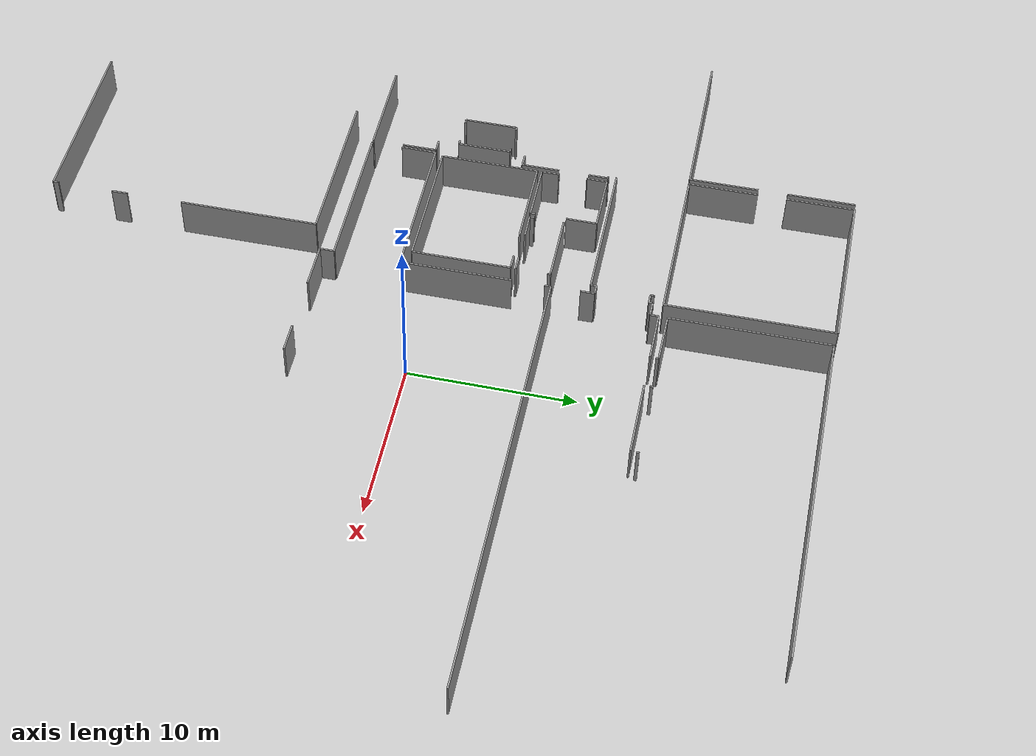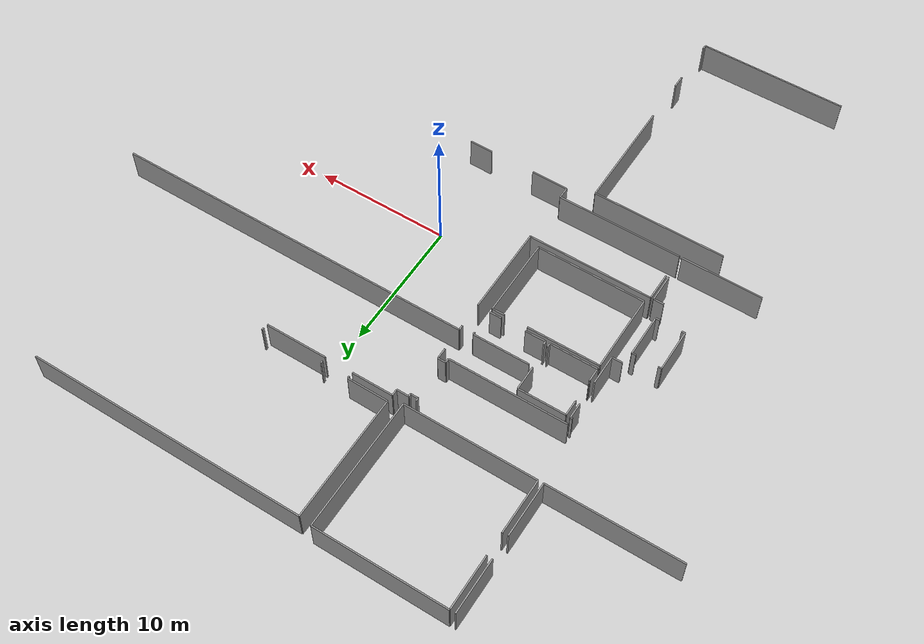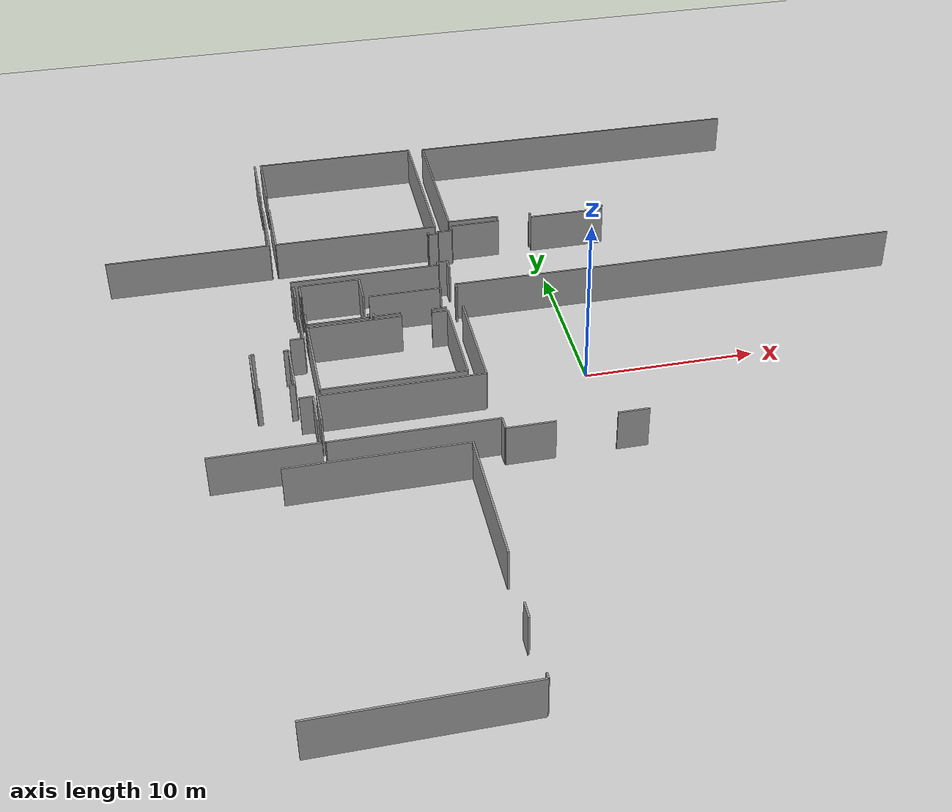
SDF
<sdf version="1.6">
 <world name="default">
  <model name="ground_plane">
   <static>1</static>
   <link name="link">
    <collision name="collision">
     <geometry><plane><normal>0 0 1</normal><size>100 100</size></plane></geometry>
     <surface><friction><ode><mu>100</mu><mu2>50</mu2></ode></friction></surface>
    </collision>
    <visual name="visual">
     <cast_shadows>0</cast_shadows>
     <geometry><plane><normal>0 0 1</normal><size>100 100</size></plane></geometry>
     <material>
      <script><uri>file://media/materials/scripts/gazebo.material</uri><name>Gazebo/Grey</name></script>
     </material>
    </visual>
   </link>
  </model>
  <model name="0510032194_A_40_1_102">
   <static>1</static>
   <link name="Wall_89">
    <collision name="Wall_89_Collision">
     <geometry><box><size>4.08725719516 0.1 2.5</size></box></geometry>
     <pose>2.04362859758 0 1.25 0 0 0</pose>
    </collision>
    <visual name="Wall_89_Visual">
     <pose>2.04362859758 0 1.25 0 0 0</pose>
     <geometry><box><size>4.08725719516 0.1 2.5</size></box></geometry>
     <material>
      <script><uri>file://media/materials/scripts/gazebo.material</uri><name>Gazebo/Grey</name></script>
      <ambient>1 1 1 1</ambient>
     </material>
    </visual>
    <pose>51.1231312926 -0.00457642631954 0 0 0 -1.57079632679</pose>
   </link>
   <link name="Wall_90">
    <collision name="Wall_90_Collision">
     <geometry><box><size>4.16683616394 0.1 2.5</size></box></geometry>
     <pose>2.08341808197 0 1.25 0 0 0</pose>
    </collision>
    <visual name="Wall_90_Visual">
     <pose>2.08341808197 0 1.25 0 0 0</pose>
     <geometry><box><size>4.16683616394 0.1 2.5</size></box></geometry>
     <material>
      <script><uri>file://media/materials/scripts/gazebo.material</uri><name>Gazebo/Grey</name></script>
      <ambient>1 1 1 1</ambient>
     </material>
    </visual>
    <pose>51.1231312926 -5.85057968067 0 0 0 -1.57079632679</pose>
   </link>
   <link name="Wall_91">
    <collision name="Wall_91_Collision">
     <geometry><box><size>9.88649136722 0.1 2.5</size></box></geometry>
     <pose>4.94324568361 0 1.25 0 0 0</pose>
    </collision>
    <visual name="Wall_91_Visual">
     <pose>4.94324568361 0 1.25 0 0 0</pose>
     <geometry><box><size>9.88649136722 0.1 2.5</size></box></geometry>
     <material>
      <script><uri>file://media/materials/scripts/gazebo.material</uri><name>Gazebo/Grey</name></script>
      <ambient>1 1 1 1</ambient>
     </material>
    </visual>
    <pose>51.1231312926 -10.0174158446 0 0 0 -3.14002394675</pose>
   </link>
   <link name="Wall_99">
    <collision name="Wall_99_Collision">
     <geometry><box><size>4.18234516424 0.1 2.5</size></box></geometry>
     <pose>2.09117258212 0 1.25 0 0 0</pose>
    </collision>
    <visual name="Wall_99_Visual">
     <pose>2.09117258212 0 1.25 0 0 0</pose>
     <geometry><box><size>4.18234516424 0.1 2.5</size></box></geometry>
     <material>
      <script><uri>file://media/materials/scripts/gazebo.material</uri><name>Gazebo/Grey</name></script>
      <ambient>1 1 1 1</ambient>
     </material>
    </visual>
    <pose>51.527890776 -10.0075002542 0 0 0 1.57079632679</pose>
   </link>
   <link name="Wall_100">
    <collision name="Wall_100_Collision">
     <geometry><box><size>4.07556188345 0.1 2.5</size></box></geometry>
     <pose>2.03778094173 0 1.25 0 0 0</pose>
    </collision>
    <visual name="Wall_100_Visual">
     <pose>2.03778094173 0 1.25 0 0 0</pose>
     <geometry><box><size>4.07556188345 0.1 2.5</size></box></geometry>
     <material>
      <script><uri>file://media/materials/scripts/gazebo.material</uri><name>Gazebo/Grey</name></script>
      <ambient>1 1 1 1</ambient>
     </material>
    </visual>
    <pose>51.527890776 -4.09475744941 0 0 0 1.57079632679</pose>
   </link>
   <link name="Wall_101">
    <collision name="Wall_101_Collision">
     <geometry><box><size>9.96643954032 0.1 2.5</size></box></geometry>
     <pose>4.98321977016 0 1.25 0 0 0</pose>
    </collision>
    <visual name="Wall_101_Visual">
     <pose>4.98321977016 0 1.25 0 0 0</pose>
     <geometry><box><size>9.96643954032 0.1 2.5</size></box></geometry>
     <material>
      <script><uri>file://media/materials/scripts/gazebo.material</uri><name>Gazebo/Grey</name></script>
      <ambient>1 1 1 1</ambient>
     </material>
    </visual>
    <pose>51.527890776 -0.0191955659514 0 0 0 0.0</pose>
   </link>
   <link name="Wall_102">
    <collision name="Wall_102_Collision">
     <geometry><box><size>10.013729279 0.1 2.5</size></box></geometry>
     <pose>5.00686463948 0 1.25 0 0 0</pose>
    </collision>
    <visual name="Wall_102_Visual">
     <pose>5.00686463948 0 1.25 0 0 0</pose>
     <geometry><box><size>10.013729279 0.1 2.5</size></box></geometry>
     <material>
      <script><uri>file://media/materials/scripts/gazebo.material</uri><name>Gazebo/Grey</name></script>
      <ambient>1 1 1 1</ambient>
     </material>
    </visual>
    <pose>61.4943303163 -0.0191955659514 0 0 0 -1.57079632679</pose>
   </link>
   <link name="Wall_103">
    <collision name="Wall_103_Collision">
     <geometry><box><size>9.9664719696 0.1 2.5</size></box></geometry>
     <pose>4.9832359848 0 1.25 0 0 0</pose>
    </collision>
    <visual name="Wall_103_Visual">
     <pose>4.9832359848 0 1.25 0 0 0</pose>
     <geometry><box><size>9.9664719696 0.1 2.5</size></box></geometry>
     <material>
      <script><uri>file://media/materials/scripts/gazebo.material</uri><name>Gazebo/Grey</name></script>
      <ambient>1 1 1 1</ambient>
     </material>
    </visual>
    <pose>61.4943303163 -10.0329248449 0 0 0 3.13904163872</pose>
   </link>
   <link name="Wall_104">
    <collision name="Wall_104_Collision">
     <geometry><box><size>9.50676294112 0.1 2.5</size></box></geometry>
     <pose>4.75338147056 0 1.25 0 0 0</pose>
    </collision>
    <visual name="Wall_104_Visual">
     <pose>4.75338147056 0 1.25 0 0 0</pose>
     <geometry><box><size>9.50676294112 0.1 2.5</size></box></geometry>
     <material>
      <script><uri>file://media/materials/scripts/gazebo.material</uri><name>Gazebo/Grey</name></script>
      <ambient>1 1 1 1</ambient>
     </material>
    </visual>
    <pose>62.4490236957 -9.65282721448 0 0 0 1.57079632679</pose>
   </link>
   <link name="Wall_105">
    <collision name="Wall_105_Collision">
     <geometry><box><size>21.0210515611 0.1 2.5</size></box></geometry>
     <pose>10.5105257805 0 1.25 0 0 0</pose>
    </collision>
    <visual name="Wall_105_Visual">
     <pose>10.5105257805 0 1.25 0 0 0</pose>
     <geometry><box><size>21.0210515611 0.1 2.5</size></box></geometry>
     <material>
      <script><uri>file://media/materials/scripts/gazebo.material</uri><name>Gazebo/Grey</name></script>
      <ambient>1 1 1 1</ambient>
     </material>
    </visual>
    <pose>62.4490236957 -0.146064273365 0 0 0 0.0</pose>
   </link>
   <link name="Wall_113">
    <collision name="Wall_113_Collision">
     <geometry><box><size>0.173014339469 0.1 2.5</size></box></geometry>
     <pose>0.0865071697346 0 1.25 0 0 0</pose>
    </collision>
    <visual name="Wall_113_Visual">
     <pose>0.0865071697346 0 1.25 0 0 0</pose>
     <geometry><box><size>0.173014339469 0.1 2.5</size></box></geometry>
     <material>
      <script><uri>file://media/materials/scripts/gazebo.material</uri><name>Gazebo/Grey</name></script>
      <ambient>1 1 1 1</ambient>
     </material>
    </visual>
    <pose>72.3759279976 -9.84300315265 0 0 0 1.57079632679</pose>
   </link>
   <link name="Wall_115">
    <collision name="Wall_115_Collision">
     <geometry><box><size>0.177972134649 0.1 2.5</size></box></geometry>
     <pose>0.0889860673243 0 1.25 0 0 0</pose>
    </collision>
    <visual name="Wall_115_Visual">
     <pose>0.0889860673243 0 1.25 0 0 0</pose>
     <geometry><box><size>0.177972134649 0.1 2.5</size></box></geometry>
     <material>
      <script><uri>file://media/materials/scripts/gazebo.material</uri><name>Gazebo/Grey</name></script>
      <ambient>1 1 1 1</ambient>
     </material>
    </visual>
    <pose>67.6519119292 -9.66998881318 0 0 0 -1.57079632679</pose>
   </link>
   <link name="Wall_116">
    <collision name="Wall_116_Collision">
     <geometry><box><size>0.163734363877 0.1 2.5</size></box></geometry>
     <pose>0.0818671819384 0 1.25 0 0 0</pose>
    </collision>
    <visual name="Wall_116_Visual">
     <pose>0.0818671819384 0 1.25 0 0 0</pose>
     <geometry><box><size>0.163734363877 0.1 2.5</size></box></geometry>
     <material>
      <script><uri>file://media/materials/scripts/gazebo.material</uri><name>Gazebo/Grey</name></script>
      <ambient>1 1 1 1</ambient>
     </material>
    </visual>
    <pose>65.5434506254 -9.84796094783 0 0 0 1.57079632679</pose>
   </link>
   <link name="Wall_117">
    <collision name="Wall_117_Collision">
     <geometry><box><size>3.09458623144 0.1 2.5</size></box></geometry>
     <pose>1.54729311572 0 1.25 0 0 0</pose>
    </collision>
    <visual name="Wall_117_Visual">
     <pose>1.54729311572 0 1.25 0 0 0</pose>
     <geometry><box><size>3.09458623144 0.1 2.5</size></box></geometry>
     <material>
      <script><uri>file://media/materials/scripts/gazebo.material</uri><name>Gazebo/Grey</name></script>
      <ambient>1 1 1 1</ambient>
     </material>
    </visual>
    <pose>65.5434506254 -9.68422658395 0 0 0 3.13144593092</pose>
   </link>
   <link name="Wall_203">
    <collision name="Wall_203_Collision">
     <geometry><box><size>0.154708634191 0.1 2.5</size></box></geometry>
     <pose>0.0773543170955 0 1.25 0 0 0</pose>
    </collision>
    <visual name="Wall_203_Visual">
     <pose>0.0773543170955 0 1.25 0 0 0</pose>
     <geometry><box><size>0.154708634191 0.1 2.5</size></box></geometry>
     <material>
      <script><uri>file://media/materials/scripts/gazebo.material</uri><name>Gazebo/Grey</name></script>
      <ambient>1 1 1 1</ambient>
     </material>
    </visual>
    <pose>51.9325231364 -14.8812671616 0 0 0 0.0</pose>
   </link>
   <link name="Wall_204">
    <collision name="Wall_204_Collision">
     <geometry><box><size>1.18275195769 0.1 2.5</size></box></geometry>
     <pose>0.591375978847 0 1.25 0 0 0</pose>
    </collision>
    <visual name="Wall_204_Visual">
     <pose>0.591375978847 0 1.25 0 0 0</pose>
     <geometry><box><size>1.18275195769 0.1 2.5</size></box></geometry>
     <material>
      <script><uri>file://media/materials/scripts/gazebo.material</uri><name>Gazebo/Grey</name></script>
      <ambient>1 1 1 1</ambient>
     </material>
    </visual>
    <pose>52.0872317706 -14.8812671616 0 0 0 -1.57079632679</pose>
   </link>
   <link name="Wall_205">
    <collision name="Wall_205_Collision">
     <geometry><box><size>2.27817044646 0.1 2.5</size></box></geometry>
     <pose>1.13908522323 0 1.25 0 0 0</pose>
    </collision>
    <visual name="Wall_205_Visual">
     <pose>1.13908522323 0 1.25 0 0 0</pose>
     <geometry><box><size>2.27817044646 0.1 2.5</size></box></geometry>
     <material>
      <script><uri>file://media/materials/scripts/gazebo.material</uri><name>Gazebo/Grey</name></script>
      <ambient>1 1 1 1</ambient>
     </material>
    </visual>
    <pose>52.0872317706 -17.8981490898 0 0 0 -1.57079632679</pose>
   </link>
   <link name="Wall_206">
    <collision name="Wall_206_Collision">
     <geometry><box><size>0.78905217126 0.1 2.5</size></box></geometry>
     <pose>0.39452608563 0 1.25 0 0 0</pose>
    </collision>
    <visual name="Wall_206_Visual">
     <pose>0.39452608563 0 1.25 0 0 0</pose>
     <geometry><box><size>0.78905217126 0.1 2.5</size></box></geometry>
     <material>
      <script><uri>file://media/materials/scripts/gazebo.material</uri><name>Gazebo/Grey</name></script>
      <ambient>1 1 1 1</ambient>
     </material>
    </visual>
    <pose>52.0872317706 -20.1763195363 0 0 0 3.14159265359</pose>
   </link>
   <link name="Wall_209">
    <collision name="Wall_209_Collision">
     <geometry><box><size>0.235940201363 0.1 2.5</size></box></geometry>
     <pose>0.117970100681 0 1.25 0 0 0</pose>
    </collision>
    <visual name="Wall_209_Visual">
     <pose>0.117970100681 0 1.25 0 0 0</pose>
     <geometry><box><size>0.235940201363 0.1 2.5</size></box></geometry>
     <material>
      <script><uri>file://media/materials/scripts/gazebo.material</uri><name>Gazebo/Grey</name></script>
      <ambient>1 1 1 1</ambient>
     </material>
    </visual>
    <pose>60.9356249364 -10.6431150208 0 0 0 -1.57079632679</pose>
   </link>
   <link name="Wall_210">
    <collision name="Wall_210_Collision">
     <geometry><box><size>0.576756839215 0.1 2.5</size></box></geometry>
     <pose>0.288378419607 0 1.25 0 0 0</pose>
    </collision>
    <visual name="Wall_210_Visual">
     <pose>0.288378419607 0 1.25 0 0 0</pose>
     <geometry><box><size>0.576756839215 0.1 2.5</size></box></geometry>
     <material>
      <script><uri>file://media/materials/scripts/gazebo.material</uri><name>Gazebo/Grey</name></script>
      <ambient>1 1 1 1</ambient>
     </material>
    </visual>
    <pose>60.9356249364 -10.8790552222 0 0 0 0.0</pose>
   </link>
   <link name="Wall_211">
    <collision name="Wall_211_Collision">
     <geometry><box><size>0.208990135259 0.1 2.5</size></box></geometry>
     <pose>0.104495067629 0 1.25 0 0 0</pose>
    </collision>
    <visual name="Wall_211_Visual">
     <pose>0.104495067629 0 1.25 0 0 0</pose>
     <geometry><box><size>0.208990135259 0.1 2.5</size></box></geometry>
     <material>
      <script><uri>file://media/materials/scripts/gazebo.material</uri><name>Gazebo/Grey</name></script>
      <ambient>1 1 1 1</ambient>
     </material>
    </visual>
    <pose>61.5123817757 -10.8790552222 0 0 0 1.57079632679</pose>
   </link>
   <link name="Wall_212">
    <collision name="Wall_212_Collision">
     <geometry><box><size>0.919480321367 0.1 2.5</size></box></geometry>
     <pose>0.459740160683 0 1.25 0 0 0</pose>
    </collision>
    <visual name="Wall_212_Visual">
     <pose>0.459740160683 0 1.25 0 0 0</pose>
     <geometry><box><size>0.919480321367 0.1 2.5</size></box></geometry>
     <material>
      <script><uri>file://media/materials/scripts/gazebo.material</uri><name>Gazebo/Grey</name></script>
      <ambient>1 1 1 1</ambient>
     </material>
    </visual>
    <pose>61.5123817757 -10.670065087 0 0 0 0.0</pose>
   </link>
   <link name="Wall_213">
    <collision name="Wall_213_Collision">
     <geometry><box><size>0.49310993593 0.1 2.5</size></box></geometry>
     <pose>0.246554967965 0 1.25 0 0 0</pose>
    </collision>
    <visual name="Wall_213_Visual">
     <pose>0.246554967965 0 1.25 0 0 0</pose>
     <geometry><box><size>0.49310993593 0.1 2.5</size></box></geometry>
     <material>
      <script><uri>file://media/materials/scripts/gazebo.material</uri><name>Gazebo/Grey</name></script>
      <ambient>1 1 1 1</ambient>
     </material>
    </visual>
    <pose>62.431862097 -10.670065087 0 0 0 1.57079632679</pose>
   </link>
   <link name="Wall_214">
    <collision name="Wall_214_Collision">
     <geometry><box><size>3.10014746263 0.1 2.5</size></box></geometry>
     <pose>1.55007373131 0 1.25 0 0 0</pose>
    </collision>
    <visual name="Wall_214_Visual">
     <pose>1.55007373131 0 1.25 0 0 0</pose>
     <geometry><box><size>3.10014746263 0.1 2.5</size></box></geometry>
     <material>
      <script><uri>file://media/materials/scripts/gazebo.material</uri><name>Gazebo/Grey</name></script>
      <ambient>1 1 1 1</ambient>
     </material>
    </visual>
    <pose>62.431862097 -10.176955151 0 0 0 0.0</pose>
   </link>
   <link name="Wall_215">
    <collision name="Wall_215_Collision">
     <geometry><box><size>4.66286992779 0.1 2.5</size></box></geometry>
     <pose>2.3314349639 0 1.25 0 0 0</pose>
    </collision>
    <visual name="Wall_215_Visual">
     <pose>2.3314349639 0 1.25 0 0 0</pose>
     <geometry><box><size>4.66286992779 0.1 2.5</size></box></geometry>
     <material>
      <script><uri>file://media/materials/scripts/gazebo.material</uri><name>Gazebo/Grey</name></script>
      <ambient>1 1 1 1</ambient>
     </material>
    </visual>
    <pose>67.6539458965 -10.176955151 0 0 0 0.0</pose>
   </link>
   <link name="Wall_232">
    <collision name="Wall_232_Collision">
     <geometry><box><size>0.835706295129 0.1 2.5</size></box></geometry>
     <pose>0.417853147564 0 1.25 0 0 0</pose>
    </collision>
    <visual name="Wall_232_Visual">
     <pose>0.417853147564 0 1.25 0 0 0</pose>
     <geometry><box><size>0.835706295129 0.1 2.5</size></box></geometry>
     <material>
      <script><uri>file://media/materials/scripts/gazebo.material</uri><name>Gazebo/Grey</name></script>
      <ambient>1 1 1 1</ambient>
     </material>
    </visual>
    <pose>61.5043730296 -14.8888945388 0 0 0 1.57079632679</pose>
   </link>
   <link name="Wall_233">
    <collision name="Wall_233_Collision">
     <geometry><box><size>0.595952405166 0.1 2.5</size></box></geometry>
     <pose>0.297976202583 0 1.25 0 0 0</pose>
    </collision>
    <visual name="Wall_233_Visual">
     <pose>0.297976202583 0 1.25 0 0 0</pose>
     <geometry><box><size>0.595952405166 0.1 2.5</size></box></geometry>
     <material>
      <script><uri>file://media/materials/scripts/gazebo.material</uri><name>Gazebo/Grey</name></script>
      <ambient>1 1 1 1</ambient>
     </material>
    </visual>
    <pose>61.5043730296 -14.0531882437 0 0 0 3.14159265359</pose>
   </link>
   <link name="Wall_234">
    <collision name="Wall_234_Collision">
     <geometry><box><size>0.326833112987 0.1 2.5</size></box></geometry>
     <pose>0.163416556493 0 1.25 0 0 0</pose>
    </collision>
    <visual name="Wall_234_Visual">
     <pose>0.163416556493 0 1.25 0 0 0</pose>
     <geometry><box><size>0.326833112987 0.1 2.5</size></box></geometry>
     <material>
      <script><uri>file://media/materials/scripts/gazebo.material</uri><name>Gazebo/Grey</name></script>
      <ambient>1 1 1 1</ambient>
     </material>
    </visual>
    <pose>60.9084206244 -14.0531882437 0 0 0 -1.57079632679</pose>
   </link>
   <link name="Wall_235">
    <collision name="Wall_235_Collision">
     <geometry><box><size>8.95924438117 0.1 2.5</size></box></geometry>
     <pose>4.47962219058 0 1.25 0 0 0</pose>
    </collision>
    <visual name="Wall_235_Visual">
     <pose>4.47962219058 0 1.25 0 0 0</pose>
     <geometry><box><size>8.95924438117 0.1 2.5</size></box></geometry>
     <material>
      <script><uri>file://media/materials/scripts/gazebo.material</uri><name>Gazebo/Grey</name></script>
      <ambient>1 1 1 1</ambient>
     </material>
    </visual>
    <pose>60.9084206244 -14.3800213567 0 0 0 3.14159265359</pose>
   </link>
   <link name="Wall_263">
    <collision name="Wall_263_Collision">
     <geometry><box><size>9.32001932269 0.1 2.5</size></box></geometry>
     <pose>4.66000966134 0 1.25 0 0 0</pose>
    </collision>
    <visual name="Wall_263_Visual">
     <pose>4.66000966134 0 1.25 0 0 0</pose>
     <geometry><box><size>9.32001932269 0.1 2.5</size></box></geometry>
     <material>
      <script><uri>file://media/materials/scripts/gazebo.material</uri><name>Gazebo/Grey</name></script>
      <ambient>1 1 1 1</ambient>
     </material>
    </visual>
    <pose>52.1997355843 -25.5879436591 0 0 0 0.0</pose>
   </link>
   <link name="Wall_264">
    <collision name="Wall_264_Collision">
     <geometry><box><size>6.6519627784 0.1 2.5</size></box></geometry>
     <pose>3.3259813892 0 1.25 0 0 0</pose>
    </collision>
    <visual name="Wall_264_Visual">
     <pose>3.3259813892 0 1.25 0 0 0</pose>
     <geometry><box><size>6.6519627784 0.1 2.5</size></box></geometry>
     <material>
      <script><uri>file://media/materials/scripts/gazebo.material</uri><name>Gazebo/Grey</name></script>
      <ambient>1 1 1 1</ambient>
     </material>
    </visual>
    <pose>61.5197549069 -25.5879436591 0 0 0 1.57079632679</pose>
   </link>
   <link name="Wall_265">
    <collision name="Wall_265_Collision">
     <geometry><box><size>0.369800671209 0.1 2.5</size></box></geometry>
     <pose>0.184900335605 0 1.25 0 0 0</pose>
    </collision>
    <visual name="Wall_265_Visual">
     <pose>0.184900335605 0 1.25 0 0 0</pose>
     <geometry><box><size>0.369800671209 0.1 2.5</size></box></geometry>
     <material>
      <script><uri>file://media/materials/scripts/gazebo.material</uri><name>Gazebo/Grey</name></script>
      <ambient>1 1 1 1</ambient>
     </material>
    </visual>
    <pose>61.5197549069 -16.9959574901 0 0 0 1.57079632679</pose>
   </link>
   <link name="Wall_266">
    <collision name="Wall_266_Collision">
     <geometry><box><size>27.442794671 0.1 2.5</size></box></geometry>
     <pose>13.7213973355 0 1.25 0 0 0</pose>
    </collision>
    <visual name="Wall_266_Visual">
     <pose>13.7213973355 0 1.25 0 0 0</pose>
     <geometry><box><size>27.442794671 0.1 2.5</size></box></geometry>
     <material>
      <script><uri>file://media/materials/scripts/gazebo.material</uri><name>Gazebo/Grey</name></script>
      <ambient>1 1 1 1</ambient>
     </material>
    </visual>
    <pose>61.5197549069 -16.6261568189 0 0 0 0.0</pose>
   </link>
   <link name="Wall_275">
    <collision name="Wall_275_Collision">
     <geometry><box><size>1.75811044442 0.1 2.5</size></box></geometry>
     <pose>0.879055222211 0 1.25 0 0 0</pose>
    </collision>
    <visual name="Wall_275_Visual">
     <pose>0.879055222211 0 1.25 0 0 0</pose>
     <geometry><box><size>1.75811044442 0.1 2.5</size></box></geometry>
     <material>
      <script><uri>file://media/materials/scripts/gazebo.material</uri><name>Gazebo/Grey</name></script>
      <ambient>1 1 1 1</ambient>
     </material>
    </visual>
    <pose>69.4027763653 -30.4566256483 0 0 0 3.14159265359</pose>
   </link>
   <link name="Wall_276">
    <collision name="Wall_276_Collision">
     <geometry><box><size>2.7546272755 0.1 2.5</size></box></geometry>
     <pose>1.37731363775 0 1.25 0 0 0</pose>
    </collision>
    <visual name="Wall_276_Visual">
     <pose>1.37731363775 0 1.25 0 0 0</pose>
     <geometry><box><size>2.7546272755 0.1 2.5</size></box></geometry>
     <material>
      <script><uri>file://media/materials/scripts/gazebo.material</uri><name>Gazebo/Grey</name></script>
      <ambient>1 1 1 1</ambient>
     </material>
    </visual>
    <pose>64.2720939693 -30.4566256483 0 0 0 3.14159265359</pose>
   </link>
   <link name="Wall_277">
    <collision name="Wall_277_Collision">
     <geometry><box><size>0.867868402319 0.1 2.5</size></box></geometry>
     <pose>0.433934201159 0 1.25 0 0 0</pose>
    </collision>
    <visual name="Wall_277_Visual">
     <pose>0.433934201159 0 1.25 0 0 0</pose>
     <geometry><box><size>0.867868402319 0.1 2.5</size></box></geometry>
     <material>
      <script><uri>file://media/materials/scripts/gazebo.material</uri><name>Gazebo/Grey</name></script>
      <ambient>1 1 1 1</ambient>
     </material>
    </visual>
    <pose>61.5174666938 -30.4566256483 0 0 0 1.57079632679</pose>
   </link>
   <link name="Wall_278">
    <collision name="Wall_278_Collision">
     <geometry><box><size>9.33997762636 0.1 2.5</size></box></geometry>
     <pose>4.66998881318 0 1.25 0 0 0</pose>
    </collision>
    <visual name="Wall_278_Visual">
     <pose>4.66998881318 0 1.25 0 0 0</pose>
     <geometry><box><size>9.33997762636 0.1 2.5</size></box></geometry>
     <material>
      <script><uri>file://media/materials/scripts/gazebo.material</uri><name>Gazebo/Grey</name></script>
      <ambient>1 1 1 1</ambient>
     </material>
    </visual>
    <pose>61.5174666938 -29.588757246 0 0 0 3.14159265359</pose>
   </link>
   <link name="Wall_279">
    <collision name="Wall_279_Collision">
     <geometry><box><size>0.0479253534018 0.1 2.5</size></box></geometry>
     <pose>0.0239626767009 0 1.25 0 0 0</pose>
    </collision>
    <visual name="Wall_279_Visual">
     <pose>0.0239626767009 0 1.25 0 0 0</pose>
     <geometry><box><size>0.0479253534018 0.1 2.5</size></box></geometry>
     <material>
      <script><uri>file://media/materials/scripts/gazebo.material</uri><name>Gazebo/Grey</name></script>
      <ambient>1 1 1 1</ambient>
     </material>
    </visual>
    <pose>52.1774890674 -29.588757246 0 0 0 1.57079632679</pose>
   </link>
   <link name="Wall_280">
    <collision name="Wall_280_Collision">
     <geometry><box><size>2.10857866275 0.1 2.5</size></box></geometry>
     <pose>1.05428933138 0 1.25 0 0 0</pose>
    </collision>
    <visual name="Wall_280_Visual">
     <pose>1.05428933138 0 1.25 0 0 0</pose>
     <geometry><box><size>2.10857866275 0.1 2.5</size></box></geometry>
     <material>
      <script><uri>file://media/materials/scripts/gazebo.material</uri><name>Gazebo/Grey</name></script>
      <ambient>1 1 1 1</ambient>
     </material>
    </visual>
    <pose>52.1774890674 -27.6964049629 0 0 0 1.56024565114</pose>
   </link>
   <link name="Wall_281">
    <collision name="Wall_281_Collision">
     <geometry><box><size>0.284119800671 0.1 2.5</size></box></geometry>
     <pose>0.142059900336 0 1.25 0 0 0</pose>
    </collision>
    <visual name="Wall_281_Visual">
     <pose>0.142059900336 0 1.25 0 0 0</pose>
     <geometry><box><size>0.284119800671 0.1 2.5</size></box></geometry>
     <material>
      <script><uri>file://media/materials/scripts/gazebo.material</uri><name>Gazebo/Grey</name></script>
      <ambient>1 1 1 1</ambient>
     </material>
    </visual>
    <pose>56.2966541239 -18.9031831588 0 0 0 1.57079632679</pose>
   </link>
   <link name="Wall_282">
    <collision name="Wall_282_Collision">
     <geometry><box><size>4.27120410861 0.1 2.5</size></box></geometry>
     <pose>2.13560205431 0 1.25 0 0 0</pose>
    </collision>
    <visual name="Wall_282_Visual">
     <pose>2.13560205431 0 1.25 0 0 0</pose>
     <geometry><box><size>4.27120410861 0.1 2.5</size></box></geometry>
     <material>
      <script><uri>file://media/materials/scripts/gazebo.material</uri><name>Gazebo/Grey</name></script>
      <ambient>1 1 1 1</ambient>
     </material>
    </visual>
    <pose>56.2966541239 -16.8256127326 0 0 0 0.0</pose>
   </link>
   <link name="Wall_283">
    <collision name="Wall_283_Collision">
     <geometry><box><size>0.171870232889 0.1 2.5</size></box></geometry>
     <pose>0.0859351164446 0 1.25 0 0 0</pose>
    </collision>
    <visual name="Wall_283_Visual">
     <pose>0.0859351164446 0 1.25 0 0 0</pose>
     <geometry><box><size>0.171870232889 0.1 2.5</size></box></geometry>
     <material>
      <script><uri>file://media/materials/scripts/gazebo.material</uri><name>Gazebo/Grey</name></script>
      <ambient>1 1 1 1</ambient>
     </material>
    </visual>
    <pose>60.5678582325 -16.8256127326 0 0 0 -1.57079632679</pose>
   </link>
   <link name="Wall_284">
    <collision name="Wall_284_Collision">
     <geometry><box><size>0.896598189769 0.1 2.5</size></box></geometry>
     <pose>0.448299094885 0 1.25 0 0 0</pose>
    </collision>
    <visual name="Wall_284_Visual">
     <pose>0.448299094885 0 1.25 0 0 0</pose>
     <geometry><box><size>0.896598189769 0.1 2.5</size></box></geometry>
     <material>
      <script><uri>file://media/materials/scripts/gazebo.material</uri><name>Gazebo/Grey</name></script>
      <ambient>1 1 1 1</ambient>
     </material>
    </visual>
    <pose>60.5678582325 -18.8824621174 0 0 0 3.14159265359</pose>
   </link>
   <link name="Wall_285">
    <collision name="Wall_285_Collision">
     <geometry><box><size>1.54646243098 0.1 2.5</size></box></geometry>
     <pose>0.77323121549 0 1.25 0 0 0</pose>
    </collision>
    <visual name="Wall_285_Visual">
     <pose>0.77323121549 0 1.25 0 0 0</pose>
     <geometry><box><size>1.54646243098 0.1 2.5</size></box></geometry>
     <material>
      <script><uri>file://media/materials/scripts/gazebo.material</uri><name>Gazebo/Grey</name></script>
      <ambient>1 1 1 1</ambient>
     </material>
    </visual>
    <pose>57.8429777281 -18.8824621174 0 0 0 -3.12819325827</pose>
   </link>
   <link name="Wall_286">
    <collision name="Wall_286_Collision">
     <geometry><box><size>5.89850503407 0.1 2.5</size></box></geometry>
     <pose>2.94925251703 0 1.25 0 0 0</pose>
    </collision>
    <visual name="Wall_286_Visual">
     <pose>2.94925251703 0 1.25 0 0 0</pose>
     <geometry><box><size>5.89850503407 0.1 2.5</size></box></geometry>
     <material>
      <script><uri>file://media/materials/scripts/gazebo.material</uri><name>Gazebo/Grey</name></script>
      <ambient>1 1 1 1</ambient>
     </material>
    </visual>
    <pose>52.4177514492 -25.0969948134 0 0 0 1.57079632679</pose>
   </link>
   <link name="Wall_287">
    <collision name="Wall_287_Collision">
     <geometry><box><size>5.45103223838 0.1 2.5</size></box></geometry>
     <pose>2.72551611919 0 1.25 0 0 0</pose>
    </collision>
    <visual name="Wall_287_Visual">
     <pose>2.72551611919 0 1.25 0 0 0</pose>
     <geometry><box><size>5.45103223838 0.1 2.5</size></box></geometry>
     <material>
      <script><uri>file://media/materials/scripts/gazebo.material</uri><name>Gazebo/Grey</name></script>
      <ambient>1 1 1 1</ambient>
     </material>
    </visual>
    <pose>52.4177514492 -19.1984897793 0 0 0 0.0</pose>
   </link>
   <link name="Wall_288">
    <collision name="Wall_288_Collision">
     <geometry><box><size>0.95215092037 0.1 2.5</size></box></geometry>
     <pose>0.476075460185 0 1.25 0 0 0</pose>
    </collision>
    <visual name="Wall_288_Visual">
     <pose>0.476075460185 0 1.25 0 0 0</pose>
     <geometry><box><size>0.95215092037 0.1 2.5</size></box></geometry>
     <material>
      <script><uri>file://media/materials/scripts/gazebo.material</uri><name>Gazebo/Grey</name></script>
      <ambient>1 1 1 1</ambient>
     </material>
    </visual>
    <pose>59.6204108614 -19.1984897793 0 0 0 0.0</pose>
   </link>
   <link name="Wall_289">
    <collision name="Wall_289_Collision">
     <geometry><box><size>5.91846333774 0.1 2.5</size></box></geometry>
     <pose>2.95923166887 0 1.25 0 0 0</pose>
    </collision>
    <visual name="Wall_289_Visual">
     <pose>2.95923166887 0 1.25 0 0 0</pose>
     <geometry><box><size>5.91846333774 0.1 2.5</size></box></geometry>
     <material>
      <script><uri>file://media/materials/scripts/gazebo.material</uri><name>Gazebo/Grey</name></script>
      <ambient>1 1 1 1</ambient>
     </material>
    </visual>
    <pose>60.5725617818 -19.1984897793 0 0 0 -1.57079632679</pose>
   </link>
   <link name="Wall_290">
    <collision name="Wall_290_Collision">
     <geometry><box><size>8.15483475576 0.1 2.5</size></box></geometry>
     <pose>4.07741737788 0 1.25 0 0 0</pose>
    </collision>
    <visual name="Wall_290_Visual">
     <pose>4.07741737788 0 1.25 0 0 0</pose>
     <geometry><box><size>8.15483475576 0.1 2.5</size></box></geometry>
     <material>
      <script><uri>file://media/materials/scripts/gazebo.material</uri><name>Gazebo/Grey</name></script>
      <ambient>1 1 1 1</ambient>
     </material>
    </visual>
    <pose>60.5725617818 -25.1169531171 0 0 0 3.13914523139</pose>
   </link>
   <link name="Wall_291">
    <collision name="Wall_291_Collision">
     <geometry><box><size>1.04927285671 0.1 2.5</size></box></geometry>
     <pose>0.524636428354 0 1.25 0 0 0</pose>
    </collision>
    <visual name="Wall_291_Visual">
     <pose>0.524636428354 0 1.25 0 0 0</pose>
     <geometry><box><size>1.04927285671 0.1 2.5</size></box></geometry>
     <material>
      <script><uri>file://media/materials/scripts/gazebo.material</uri><name>Gazebo/Grey</name></script>
      <ambient>1 1 1 1</ambient>
     </material>
    </visual>
    <pose>52.4206752771 -18.9113190278 0 0 0 1.57079632679</pose>
   </link>
   <link name="Wall_292">
    <collision name="Wall_292_Collision">
     <geometry><box><size>0.0505949354215 0.1 2.5</size></box></geometry>
     <pose>0.0252974677108 0 1.25 0 0 0</pose>
    </collision>
    <visual name="Wall_292_Visual">
     <pose>0.0252974677108 0 1.25 0 0 0</pose>
     <geometry><box><size>0.0505949354215 0.1 2.5</size></box></geometry>
     <material>
      <script><uri>file://media/materials/scripts/gazebo.material</uri><name>Gazebo/Grey</name></script>
      <ambient>1 1 1 1</ambient>
     </material>
    </visual>
    <pose>52.4206752771 -17.8620461711 0 0 0 3.14159265359</pose>
   </link>
   <link name="Wall_293">
    <collision name="Wall_293_Collision">
     <geometry><box><size>0.0401708532493 0.1 2.5</size></box></geometry>
     <pose>0.0200854266246 0 1.25 0 0 0</pose>
    </collision>
    <visual name="Wall_293_Visual">
     <pose>0.0200854266246 0 1.25 0 0 0</pose>
     <geometry><box><size>0.0401708532493 0.1 2.5</size></box></geometry>
     <material>
      <script><uri>file://media/materials/scripts/gazebo.material</uri><name>Gazebo/Grey</name></script>
      <ambient>1 1 1 1</ambient>
     </material>
    </visual>
    <pose>52.3700803417 -16.0914776772 0 0 0 0.0</pose>
   </link>
   <link name="Wall_294">
    <collision name="Wall_294_Collision">
     <geometry><box><size>1.19457439235 0.1 2.5</size></box></geometry>
     <pose>0.597287196176 0 1.25 0 0 0</pose>
    </collision>
    <visual name="Wall_294_Visual">
     <pose>0.597287196176 0 1.25 0 0 0</pose>
     <geometry><box><size>1.19457439235 0.1 2.5</size></box></geometry>
     <material>
      <script><uri>file://media/materials/scripts/gazebo.material</uri><name>Gazebo/Grey</name></script>
      <ambient>1 1 1 1</ambient>
     </material>
    </visual>
    <pose>52.410251195 -16.0914776772 0 0 0 1.57079632679</pose>
   </link>
   <link name="Wall_295">
    <collision name="Wall_295_Collision">
     <geometry><box><size>3.57673141462 0.1 2.5</size></box></geometry>
     <pose>1.78836570731 0 1.25 0 0 0</pose>
    </collision>
    <visual name="Wall_295_Visual">
     <pose>1.78836570731 0 1.25 0 0 0</pose>
     <geometry><box><size>3.57673141462 0.1 2.5</size></box></geometry>
     <material>
      <script><uri>file://media/materials/scripts/gazebo.material</uri><name>Gazebo/Grey</name></script>
      <ambient>1 1 1 1</ambient>
     </material>
    </visual>
    <pose>52.410251195 -14.8969032849 0 0 0 0.0</pose>
   </link>
   <link name="Wall_296">
    <collision name="Wall_296_Collision">
     <geometry><box><size>1.84951184786 0.1 2.5</size></box></geometry>
     <pose>0.92475592393 0 1.25 0 0 0</pose>
    </collision>
    <visual name="Wall_296_Visual">
     <pose>0.92475592393 0 1.25 0 0 0</pose>
     <geometry><box><size>1.84951184786 0.1 2.5</size></box></geometry>
     <material>
      <script><uri>file://media/materials/scripts/gazebo.material</uri><name>Gazebo/Grey</name></script>
      <ambient>1 1 1 1</ambient>
     </material>
    </visual>
    <pose>55.9869826096 -14.8969032849 0 0 0 -1.57079632679</pose>
   </link>
   <link name="Wall_297">
    <collision name="Wall_297_Collision">
     <geometry><box><size>0.297976202583 0.1 2.5</size></box></geometry>
     <pose>0.148988101292 0 1.25 0 0 0</pose>
    </collision>
    <visual name="Wall_297_Visual">
     <pose>0.148988101292 0 1.25 0 0 0</pose>
     <geometry><box><size>0.297976202583 0.1 2.5</size></box></geometry>
     <material>
      <script><uri>file://media/materials/scripts/gazebo.material</uri><name>Gazebo/Grey</name></script>
      <ambient>1 1 1 1</ambient>
     </material>
    </visual>
    <pose>55.9869826096 -18.6135970711 0 0 0 -1.57079632679</pose>
   </link>
   <link name="Wall_298">
    <collision name="Wall_298_Collision">
     <geometry><box><size>3.56630734151 0.1 2.5</size></box></geometry>
     <pose>1.78315367076 0 1.25 0 0 0</pose>
    </collision>
    <visual name="Wall_298_Visual">
     <pose>1.78315367076 0 1.25 0 0 0</pose>
     <geometry><box><size>3.56630734151 0.1 2.5</size></box></geometry>
     <material>
      <script><uri>file://media/materials/scripts/gazebo.material</uri><name>Gazebo/Grey</name></script>
      <ambient>1 1 1 1</ambient>
     </material>
    </visual>
    <pose>55.9869826096 -18.9115732737 0 0 0 3.14152136251</pose>
   </link>
   <link name="Wall_299">
    <collision name="Wall_299_Collision">
     <geometry><box><size>3.20654937456 0.1 2.5</size></box></geometry>
     <pose>1.60327468728 0 1.25 0 0 0</pose>
    </collision>
    <visual name="Wall_299_Visual">
     <pose>1.60327468728 0 1.25 0 0 0</pose>
     <geometry><box><size>3.20654937456 0.1 2.5</size></box></geometry>
     <material>
      <script><uri>file://media/materials/scripts/gazebo.material</uri><name>Gazebo/Grey</name></script>
      <ambient>1 1 1 1</ambient>
     </material>
    </visual>
    <pose>48.967888742 -24.3582833316 0 0 0 1.57079632679</pose>
   </link>
   <link name="Wall_300">
    <collision name="Wall_300_Collision">
     <geometry><box><size>0.249033865555 0.1 2.5</size></box></geometry>
     <pose>0.124516932777 0 1.25 0 0 0</pose>
    </collision>
    <visual name="Wall_300_Visual">
     <pose>0.124516932777 0 1.25 0 0 0</pose>
     <geometry><box><size>0.249033865555 0.1 2.5</size></box></geometry>
     <material>
      <script><uri>file://media/materials/scripts/gazebo.material</uri><name>Gazebo/Grey</name></script>
      <ambient>1 1 1 1</ambient>
     </material>
    </visual>
    <pose>48.967888742 -21.1517339571 0 0 0 0.0</pose>
   </link>
   <link name="Wall_301">
    <collision name="Wall_301_Collision">
     <geometry><box><size>0.297976202583 0.1 2.5</size></box></geometry>
     <pose>0.148988101292 0 1.25 0 0 0</pose>
    </collision>
    <visual name="Wall_301_Visual">
     <pose>0.148988101292 0 1.25 0 0 0</pose>
     <geometry><box><size>0.297976202583 0.1 2.5</size></box></geometry>
     <material>
      <script><uri>file://media/materials/scripts/gazebo.material</uri><name>Gazebo/Grey</name></script>
      <ambient>1 1 1 1</ambient>
     </material>
    </visual>
    <pose>50.844350656 -21.1517339571 0 0 0 0.0</pose>
   </link>
   <link name="Wall_302">
    <collision name="Wall_302_Collision">
     <geometry><box><size>3.19650666124 0.1 2.5</size></box></geometry>
     <pose>1.59825333062 0 1.25 0 0 0</pose>
    </collision>
    <visual name="Wall_302_Visual">
     <pose>1.59825333062 0 1.25 0 0 0</pose>
     <geometry><box><size>3.19650666124 0.1 2.5</size></box></geometry>
     <material>
      <script><uri>file://media/materials/scripts/gazebo.material</uri><name>Gazebo/Grey</name></script>
      <ambient>1 1 1 1</ambient>
     </material>
    </visual>
    <pose>51.1423268585 -21.1517339571 0 0 0 -1.57079632679</pose>
   </link>
   <link name="Wall_303">
    <collision name="Wall_303_Collision">
     <geometry><box><size>0.316536153768 0.1 2.5</size></box></geometry>
     <pose>0.158268076884 0 1.25 0 0 0</pose>
    </collision>
    <visual name="Wall_303_Visual">
     <pose>0.158268076884 0 1.25 0 0 0</pose>
     <geometry><box><size>0.316536153768 0.1 2.5</size></box></geometry>
     <material>
      <script><uri>file://media/materials/scripts/gazebo.material</uri><name>Gazebo/Grey</name></script>
      <ambient>1 1 1 1</ambient>
     </material>
    </visual>
    <pose>51.1423268585 -24.3482406183 0 0 0 3.14159265359</pose>
   </link>
   <link name="Wall_304">
    <collision name="Wall_304_Collision">
     <geometry><box><size>0.266003739448 0.1 2.5</size></box></geometry>
     <pose>0.133001869724 0 1.25 0 0 0</pose>
    </collision>
    <visual name="Wall_304_Visual">
     <pose>0.133001869724 0 1.25 0 0 0</pose>
     <geometry><box><size>0.266003739448 0.1 2.5</size></box></geometry>
     <material>
      <script><uri>file://media/materials/scripts/gazebo.material</uri><name>Gazebo/Grey</name></script>
      <ambient>1 1 1 1</ambient>
     </material>
    </visual>
    <pose>49.2337028374 -24.3482406183 0 0 0 -3.10382964837</pose>
   </link>
   <link name="Wall_310">
    <collision name="Wall_310_Collision">
     <geometry><box><size>0.765153056036 0.1 2.5</size></box></geometry>
     <pose>0.382576528018 0 1.25 0 0 0</pose>
    </collision>
    <visual name="Wall_310_Visual">
     <pose>0.382576528018 0 1.25 0 0 0</pose>
     <geometry><box><size>0.765153056036 0.1 2.5</size></box></geometry>
     <material>
      <script><uri>file://media/materials/scripts/gazebo.material</uri><name>Gazebo/Grey</name></script>
      <ambient>1 1 1 1</ambient>
     </material>
    </visual>
    <pose>51.2131343435 -25.6071392251 0 0 0 0.0</pose>
   </link>
   <link name="Wall_311">
    <collision name="Wall_311_Collision">
     <geometry><box><size>2.08710464762 0.1 2.5</size></box></geometry>
     <pose>1.04355232381 0 1.25 0 0 0</pose>
    </collision>
    <visual name="Wall_311_Visual">
     <pose>1.04355232381 0 1.25 0 0 0</pose>
     <geometry><box><size>2.08710464762 0.1 2.5</size></box></geometry>
     <material>
      <script><uri>file://media/materials/scripts/gazebo.material</uri><name>Gazebo/Grey</name></script>
      <ambient>1 1 1 1</ambient>
     </material>
    </visual>
    <pose>51.9782873996 -25.6071392251 0 0 0 -1.57079632679</pose>
   </link>
   <link name="Wall_312">
    <collision name="Wall_312_Collision">
     <geometry><box><size>6.02117868402 0.1 2.5</size></box></geometry>
     <pose>3.01058934201 0 1.25 0 0 0</pose>
    </collision>
    <visual name="Wall_312_Visual">
     <pose>3.01058934201 0 1.25 0 0 0</pose>
     <geometry><box><size>6.02117868402 0.1 2.5</size></box></geometry>
     <material>
      <script><uri>file://media/materials/scripts/gazebo.material</uri><name>Gazebo/Grey</name></script>
      <ambient>1 1 1 1</ambient>
     </material>
    </visual>
    <pose>51.9782873996 -29.566892098 0 0 0 3.14159265359</pose>
   </link>
   <link name="Wall_325">
    <collision name="Wall_325_Collision">
     <geometry><box><size>9.96110037628 0.1 2.5</size></box></geometry>
     <pose>4.98055018814 0 1.25 0 0 0</pose>
    </collision>
    <visual name="Wall_325_Visual">
     <pose>4.98055018814 0 1.25 0 0 0</pose>
     <geometry><box><size>9.96110037628 0.1 2.5</size></box></geometry>
     <material>
      <script><uri>file://media/materials/scripts/gazebo.material</uri><name>Gazebo/Grey</name></script>
      <ambient>1 1 1 1</ambient>
     </material>
    </visual>
    <pose>49.6773619445 -31.1949557612 0 0 0 0.0</pose>
   </link>
   <link name="Wall_326">
    <collision name="Wall_326_Collision">
     <geometry><box><size>8.3709193532 0.1 2.5</size></box></geometry>
     <pose>4.1854596766 0 1.25 0 0 0</pose>
    </collision>
    <visual name="Wall_326_Visual">
     <pose>4.1854596766 0 1.25 0 0 0</pose>
     <geometry><box><size>8.3709193532 0.1 2.5</size></box></geometry>
     <material>
      <script><uri>file://media/materials/scripts/gazebo.material</uri><name>Gazebo/Grey</name></script>
      <ambient>1 1 1 1</ambient>
     </material>
    </visual>
    <pose>59.6384623208 -31.1949557612 0 0 0 -1.57079632679</pose>
   </link>
   <link name="Wall_327">
    <collision name="Wall_327_Collision">
     <geometry><box><size>0.978211125801 0.1 2.5</size></box></geometry>
     <pose>0.4891055629 0 1.25 0 0 0</pose>
    </collision>
    <visual name="Wall_327_Visual">
     <pose>0.4891055629 0 1.25 0 0 0</pose>
     <geometry><box><size>0.978211125801 0.1 2.5</size></box></geometry>
     <material>
      <script><uri>file://media/materials/scripts/gazebo.material</uri><name>Gazebo/Grey</name></script>
      <ambient>1 1 1 1</ambient>
     </material>
    </visual>
    <pose>59.6384623208 -42.9398454185 0 0 0 -1.57079632679</pose>
   </link>
   <link name="Wall_328">
    <collision name="Wall_328_Collision">
     <geometry><box><size>0.33153666226 0.1 2.5</size></box></geometry>
     <pose>0.16576833113 0 1.25 0 0 0</pose>
    </collision>
    <visual name="Wall_328_Visual">
     <pose>0.16576833113 0 1.25 0 0 0</pose>
     <geometry><box><size>0.33153666226 0.1 2.5</size></box></geometry>
     <material>
      <script><uri>file://media/materials/scripts/gazebo.material</uri><name>Gazebo/Grey</name></script>
      <ambient>1 1 1 1</ambient>
     </material>
    </visual>
    <pose>59.6384623208 -47.3032136683 0 0 0 -1.57079632679</pose>
   </link>
   <link name="Wall_329">
    <collision name="Wall_329_Collision">
     <geometry><box><size>11.0344314573 0.1 2.5</size></box></geometry>
     <pose>5.51721572863 0 1.25 0 0 0</pose>
    </collision>
    <visual name="Wall_329_Visual">
     <pose>5.51721572863 0 1.25 0 0 0</pose>
     <geometry><box><size>11.0344314573 0.1 2.5</size></box></geometry>
     <material>
      <script><uri>file://media/materials/scripts/gazebo.material</uri><name>Gazebo/Grey</name></script>
      <ambient>1 1 1 1</ambient>
     </material>
    </visual>
    <pose>59.6384623208 -47.6347503305 0 0 0 -3.13918485188</pose>
   </link>
   <pose>-67.7 23.8502186515 0 0 0 0</pose>
  </model>
 </world>
</sdf>
